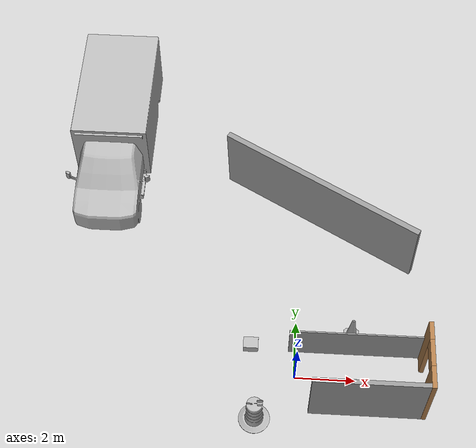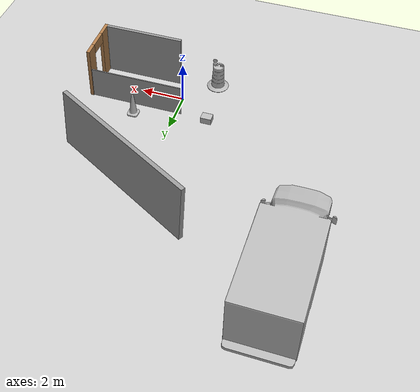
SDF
<sdf version="1.7">
 <world name="default">
  <light name="sun" type="directional">
   <pose>0 0 10 0 -0 0</pose>
   <diffuse>0.8 0.8 0.8 1</diffuse>
   <specular>0.2 0.2 0.2 1</specular>
   <attenuation>
    <range>1000</range>
    <constant>0.9</constant>
    <linear>0.01</linear>
    <quadratic>0.001</quadratic>
   </attenuation>
   <direction>-0.5 0.1 -0.9</direction>
   <spot><inner_angle>0</inner_angle><outer_angle>0</outer_angle><falloff>0</falloff></spot>
  </light>
  <model name="ground_plane">
   <static>1</static>
   <link name="link">
    <collision name="collision">
     <geometry><plane><normal>0 0 1</normal><size>100 100</size></plane></geometry>
     <surface><friction><ode><mu>100</mu><mu2>50</mu2></ode></friction></surface>
    </collision>
    <visual name="visual">
     <cast_shadows>0</cast_shadows>
     <geometry><plane><normal>0 0 1</normal><size>100 100</size></plane></geometry>
     <material>
      <script><uri>file://media/materials/scripts/gazebo.material</uri><name>Gazebo/Grey</name></script>
     </material>
    </visual>
   </link>
  </model>
  <gravity>0 0 -9.8</gravity>
  <magnetic_field>6e-06 2.3e-05 -4.2e-05</magnetic_field>
  <atmosphere type="adiabatic"/>
  <physics type="ode">
   <max_step_size>0.001</max_step_size>
   <real_time_factor>1</real_time_factor>
   <real_time_update_rate>1000</real_time_update_rate>
  </physics>
  <scene><ambient>0.4 0.4 0.4 1</ambient><background>0.7 0.7 0.7 1</background><shadows>1</shadows></scene>
  <audio><device>default</device></audio>
  <spherical_coordinates>
   <surface_model>EARTH_WGS84</surface_model>
   <latitude_deg>0</latitude_deg>
   <longitude_deg>0</longitude_deg>
   <elevation>0</elevation>
   <heading_deg>0</heading_deg>
  </spherical_coordinates>
  <model name="ambulance">
   <static>1</static>
   <link name="link">
    <collision name="collision">
     <geometry>
      <mesh><scale>0.0254 0.0254 0.0254</scale><uri>model://ambulance/meshes/ambulance.obj</uri></mesh>
     </geometry>
    </collision>
    <visual name="visual">
     <geometry>
      <mesh><scale>0.0254 0.0254 0.0254</scale><uri>model://ambulance/meshes/ambulance.obj</uri></mesh>
     </geometry>
    </visual>
   </link>
   <pose>-6.83598 8.84543 0 0 -0 0</pose>
  </model>
  <model name="cardboard_box">
   <pose>-1.4954 1.0816 0.149 0 -0 0</pose>
   <link name="link">
    <inertial>
     <mass>2</mass>
     <inertia>
      <ixx>0.0416667</ixx>
      <ixy>0</ixy>
      <ixz>0</ixz>
      <iyy>0.0566667</iyy>
      <iyz>0</iyz>
      <izz>0.0683333</izz>
     </inertia>
    </inertial>
    <collision name="collision">
     <geometry><box><size>0.5 0.4 0.3</size></box></geometry>
     <surface>
      <friction><ode><mu>1</mu><mu2>1</mu2></ode></friction>
      <contact><ode><kp>1e+07</kp><kd>1</kd><min_depth>0.001</min_depth><max_vel>0.1</max_vel></ode></contact>
     </surface>
    </collision>
    <visual name="visual">
     <pose>0 0 -0.15 0 -0 0</pose>
     <geometry>
      <mesh><uri>model://cardboard_box/meshes/cardboard_box.dae</uri><scale>1.25932 1.00745 0.755591</scale></mesh>
     </geometry>
    </visual>
   </link>
  </model>
  <model name="Construction Barrel">
   <link name="link">
    <inertial>
     <pose>0 0 0.4 0 -0 0</pose>
     <mass>500</mass>
     <inertia><ixx>51.2096</ixx><iyy>51.2096</iyy><izz>25</izz><ixy>0</ixy><ixz>0</ixz><iyz>0</iyz></inertia>
    </inertial>
    <collision name="collision">
     <geometry><mesh><uri>model://construction_barrel/meshes/construction_barrel.dae</uri></mesh></geometry>
    </collision>
    <visual name="visual">
     <geometry><mesh><uri>model://construction_barrel/meshes/construction_barrel.dae</uri></mesh></geometry>
    </visual>
   </link>
   <pose>-1.26525 -1.47814 -1e-06 1e-06 4e-06 -1.8e-05</pose>
  </model>
  <model name="Construction Cone">
   <link name="link">
    <collision name="collision">
     <geometry>
      <mesh><scale>10 10 10</scale><uri>model://construction_cone/meshes/construction_cone.dae</uri></mesh>
     </geometry>
    </collision>
    <visual name="visual">
     <geometry>
      <mesh><scale>10 10 10</scale><uri>model://construction_cone/meshes/construction_cone.dae</uri></mesh>
     </geometry>
    </visual>
    <inertial>
     <inertia><ixx>1</ixx><ixy>0</ixy><ixz>0</ixz><iyy>1</iyy><iyz>0</iyz><izz>1</izz></inertia>
     <mass>1</mass>
    </inertial>
   </link>
   <pose>1.86916 1.64574 -1e-05 -1e-06 0 0</pose>
  </model>
  <model name="grey_wall">
   <static>1</static>
   <link name="link">
    <pose>0 0 1.4 0 -0 0</pose>
    <collision name="collision"><geometry><box><size>7.5 0.2 2.8</size></box></geometry></collision>
    <visual name="visual">
     <cast_shadows>0</cast_shadows>
     <geometry><box><size>7.5 0.2 2.8</size></box></geometry>
     <material>
      <script>
       <uri>model://grey_wall/materials/scripts</uri>
       <uri>model://grey_wall/materials/textures</uri>
       <name>vrc/grey_wall</name>
      </script>
     </material>
    </visual>
   </link>
   <pose>0.695899 6.10718 0 0.049285 -0 -0.519473</pose>
  </model>
  <model name="walls">
   <pose>2.007 0.810985 0 0 -0 0</pose>
   <link name="Wall_0">
    <collision name="Wall_0_Collision">
     <geometry><box><size>4.434 0.05 1.5</size></box></geometry>
     <pose>0 0 0.75 0 -0 0</pose>
    </collision>
    <visual name="Wall_0_Visual">
     <pose>0 0 0.75 0 -0 0</pose>
     <geometry><box><size>4.434 0.05 1.5</size></box></geometry>
     <material>
      <script><uri>file://media/materials/scripts/gazebo.material</uri><name>Gazebo/Grey</name></script>
      <ambient>1 1 1 1</ambient>
     </material>
     <meta><layer>0</layer></meta>
    </visual>
    <pose>-0.025 0.161813 0 0 -0 0</pose>
   </link>
   <link name="Wall_2">
    <pose>2.167 -0.896812 0 0 -0 -1.5708</pose>
    <visual name="Wall_2_Visual_0">
     <pose>-0.822265 0 1.25 0 -0 0</pose>
     <geometry><box><size>0.60547 0.15 2.5</size></box></geometry>
     <material>
      <script><uri>file://media/materials/scripts/gazebo.material</uri><name>Gazebo/Wood</name></script>
      <ambient>1 1 1 1</ambient>
     </material>
     <meta><layer>0</layer></meta>
    </visual>
    <collision name="Wall_2_Collision_0">
     <geometry><box><size>0.60547 0.15 2.5</size></box></geometry>
     <pose>-0.822265 0 1.25 0 -0 0</pose>
    </collision>
    <visual name="Wall_2_Visual_1">
     <pose>0.752735 0 1.25 0 -0 0</pose>
     <geometry><box><size>0.74453 0.15 2.5</size></box></geometry>
     <material>
      <script><uri>file://media/materials/scripts/gazebo.material</uri><name>Gazebo/Wood</name></script>
      <ambient>1 1 1 1</ambient>
     </material>
     <meta><layer>0</layer></meta>
    </visual>
    <collision name="Wall_2_Collision_1">
     <geometry><box><size>0.74453 0.15 2.5</size></box></geometry>
     <pose>0.752735 0 1.25 0 -0 0</pose>
    </collision>
    <visual name="Wall_2_Visual_2">
     <pose>-0.06953 0 2.25 0 -0 0</pose>
     <geometry><box><size>0.9 0.15 0.5</size></box></geometry>
     <material>
      <script><uri>file://media/materials/scripts/gazebo.material</uri><name>Gazebo/Wood</name></script>
      <ambient>1 1 1 1</ambient>
     </material>
     <meta><layer>0</layer></meta>
    </visual>
    <collision name="Wall_2_Collision_2">
     <geometry><box><size>0.9 0.15 0.5</size></box></geometry>
     <pose>-0.06953 0 2.25 0 -0 0</pose>
    </collision>
   </link>
   <link name="Wall_3">
    <collision name="Wall_3_Collision">
     <geometry><box><size>3.784 0.15 2.5</size></box></geometry>
     <pose>0 0 1.25 0 -0 0</pose>
    </collision>
    <visual name="Wall_3_Visual">
     <pose>0 0 1.25 0 -0 0</pose>
     <geometry><box><size>3.784 0.15 2.5</size></box></geometry>
     <material>
      <script><uri>file://media/materials/scripts/gazebo.material</uri><name>Gazebo/Grey</name></script>
      <ambient>1 1 1 1</ambient>
     </material>
     <meta><layer>0</layer></meta>
    </visual>
    <pose>0.35 -1.93819 0 0 -0 3.14159</pose>
   </link>
   <static>1</static>
  </model>
 </world>
</sdf>
